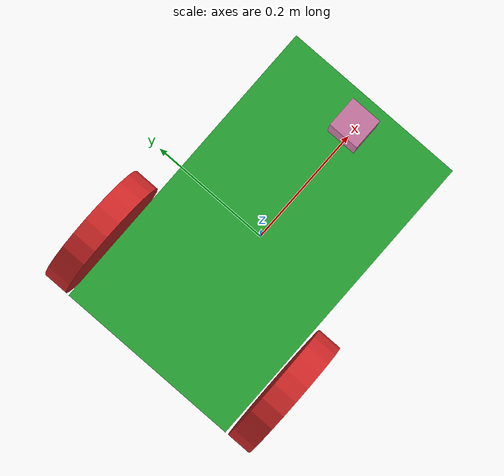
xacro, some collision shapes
<?xml version="1.0" ?>

<robot name="m2wr" xmlns:xacro="https://www.ros.org/wiki/xacro" >
    <xacro:include filename="$(find first_simulation)/urdf/m2wr.gazebo.xacro"/>
    <xacro:include filename="$(find first_simulation)/urdf/common_properties.xacro"/>

    <link name="base_footprint"/>

    <joint name="base_footprint_joint" type="fixed">
        <origin rpy="0.0 0.0 0.0" xyz="0.0 0.0 0.1"/>
        <parent link="base_footprint" />
        <child link="link_chassis" />
    </joint>

    <link name="link_chassis">
    <!-- pose and inertial -->
        <inertial>
          <origin xyz="0 0 0" rpy="0 0 0"/>
          <mass value="8.2573504e-01"/>
          <inertia ixx="2.2124416e-03" ixy="-1.2294101e-05" ixz="3.4938785e-05"
                   iyy="2.1193702e-03" iyz="-5.0120904e-06"
                   izz="2.0064271e-03" />
        </inertial>

        <collision name="collision_chassis">
            <origin xyz="0 0 0" rpy="0 0 0"/>
            <geometry>
            <box size="0.5 0.3 0.01"/>
            </geometry>
        </collision>

        <visual>
            <origin xyz="0 0 0" rpy="0 0 0"/>
            <geometry>
                <box size="0.5 0.3 0.01"/>
            </geometry>
        </visual>
    </link>
    <joint name="joint_caster_front" type="fixed">
      <parent link="link_chassis"/>
      <child link="caster_front_link"/>
      <origin xyz="0.2 0 -0.055" rpy="-1.57 0 0"/>
    </joint>
    <link name="caster_front_link">
        <collision>
            <origin xyz="0 0 0" rpy="0 0 0"/>
            <geometry>
              <sphere radius="0.05"/>
            </geometry>
        </collision>
      <visual>
          <origin xyz="0 0 0" rpy="0 0 0"/>
          <geometry>
            <sphere radius="0.05"/>
          </geometry>
      </visual>
      <inertial>
        <origin xyz="0 0 0" />
        <mass value="0.1" />
        <inertia ixx="0.01" ixy="0.0" ixz="0.0"
                 iyy="0.01" iyz="0.0"
                 izz="0.01" />
      </inertial>
    </link>
    <joint name="joint_right_wheel" type="continuous">

        <parent link="link_chassis"/>
        <child link="link_right_wheel" />
        <origin rpy="1.57 0 0" xyz="-0.15 -0.175 0.0"/>
        <axis rpy="0.0 0.0 0.0" xyz="0.0 0.0 -1.0"/>
    </joint>
    <link name="link_right_wheel">

        <inertial>
            <origin rpy="0 0 0"  xyz="0 0 0"/>
            <mass value="2.8498940e-02" />
            <inertia ixx="1.1175580e-05" ixy="-4.2369783e-11" ixz="-5.9381719e-09"
                     iyy="1.1192413e-05" iyz="-1.4400107e-11"
                     izz="2.0712558e-05" />
        </inertial>

        <collision name="link_right_wheel_collision">
            <origin rpy="0 0 0"  xyz="0 0 0"/>
            <geometry>
                <cylinder length="0.04" radius="0.1"/>
            </geometry>
        </collision>

        <visual name="link_right_wheel_visual">
          <origin rpy="0 0 0" xyz="0 0 0"/>
            <geometry>
                <cylinder length="0.04" radius="0.1"/>
            </geometry>
        </visual>

    </link>
    <joint name="joint_left_wheel" type="continuous">

        <parent link="link_chassis"/>
        <child link="link_left_wheel" />
        <origin rpy="1.57 0 0" xyz="-0.15 0.175 0.0"/>
        <axis rpy="0.0 0.0 0.0" xyz="0.0 0.0 -1.0"/>
    </joint>
    <link name="link_left_wheel">

        <inertial>
            <origin rpy="0 0 0"  xyz="0 0 0"/>
            <mass value="2.8498940e-02" />
            <inertia ixx="1.1175580e-05" ixy="-4.2369783e-11" ixz="-5.9381719e-09"
                     iyy="1.1192413e-05" iyz="-1.4400107e-11"
                     izz="2.0712558e-05" />
        </inertial>

        <collision name="link_left_wheel_collision">
            <origin rpy="0 0 0"  xyz="0 0 0"/>
            <geometry>
                <cylinder length="0.04" radius="0.1"/>
            </geometry>
        </collision>

        <visual name="link_left_wheel_visual">
            <origin rpy="0 0 0" xyz="0 0 0"/>
            <geometry>
                <cylinder length="0.04" radius="0.1"/>
            </geometry>
        </visual>
    </link>
    <joint name="joint_imu" type="fixed">
      <parent link="link_chassis"/>
      <child link="imu_link"/>
      <origin xyz="0 0 0" rpy="0 0 0"/>
    </joint>
    <link name="imu_link"/>

    <joint name="joint_sensor_laser" type="fixed">
        <origin xyz="0.2 0 0.04" rpy="0.0 0.0 0.0"/>
        <parent link="link_chassis"/>
        <child link="hokuyo_link"/>
    </joint>
    <link name="hokuyo_link">
        <pose>0 0 0 0 0 0</pose>
        <collision>
            <origin xyz="0 0 0" rpy="0 0 0" />
            <geometry>
                <box size="0.05 0.05 0.1" />
            </geometry>
        </collision>
        <visual>
            <origin xyz="0 0 0" rpy="0 0 0" />
            <geometry>
                <mesh filename="package://first_simulation/meshes/hokuyo.dae"/>
            </geometry>
        </visual>
        <inertial>
            <mass value="1e-5" />
            <origin xyz="0 0 0" rpy="0 0 0" />
        <inertia ixx="1e-6" ixy="0" ixz="0" iyy="1e-6" iyz="0" izz="1e-6"/>
        </inertial>
    </link>

</robot>
